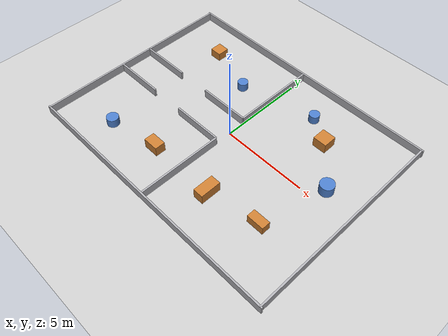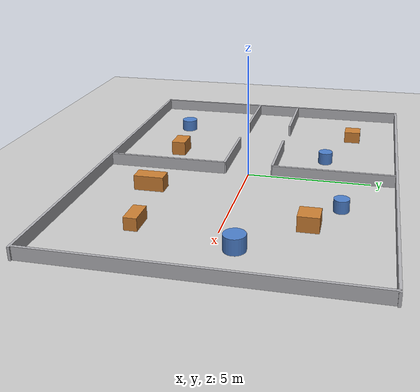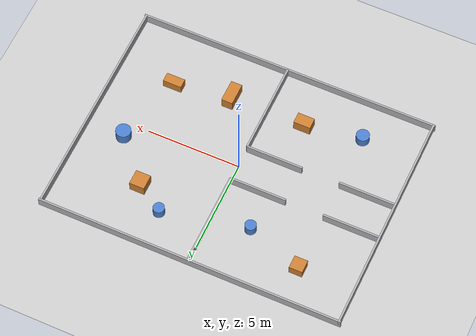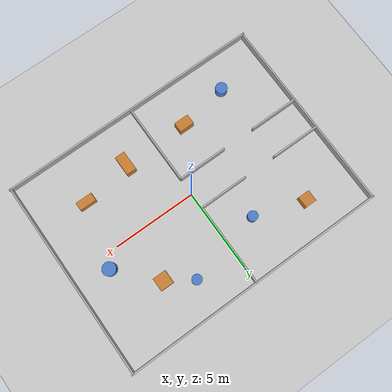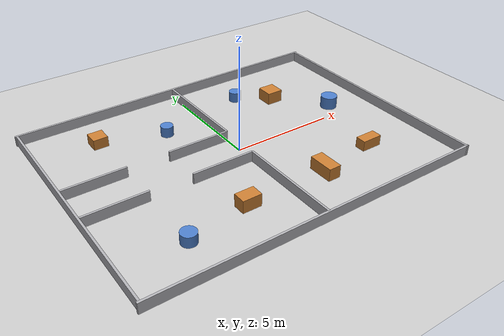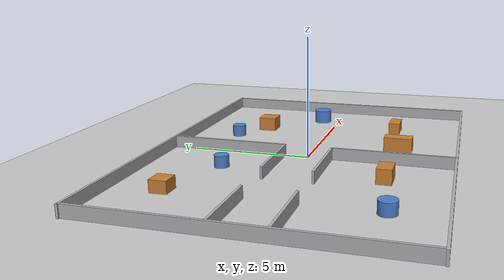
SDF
<?xml version="1.0" ?>
<sdf version="1.8">
  <world name="tribo_world">
    <physics name="1ms" type="ignored">
      <max_step_size>0.001</max_step_size>
      <real_time_factor>1.0</real_time_factor>
    </physics>

    <plugin filename="gz-sim-physics-system" name="gz::sim::systems::Physics"/>
    <plugin filename="gz-sim-sensors-system" name="gz::sim::systems::Sensors">
      <render_engine>ogre2</render_engine>
    </plugin>
    <plugin filename="gz-sim-user-commands-system" name="gz::sim::systems::UserCommands"/>
    <plugin filename="gz-sim-scene-broadcaster-system" name="gz::sim::systems::SceneBroadcaster"/>

    <!-- 바닥 (인라인 ground plane, 외부 모델 불필요) -->
    <model name="ground_plane">
      <static>true</static>
      <link name="link">
        <collision name="collision">
          <geometry>
            <plane><normal>0 0 1</normal><size>100 100</size></plane>
          </geometry>
          <surface>
            <friction><ode><mu>1.0</mu><mu2>1.0</mu2></ode></friction>
          </surface>
        </collision>
        <visual name="visual">
          <geometry>
            <plane><normal>0 0 1</normal><size>100 100</size></plane>
          </geometry>
          <material>
            <ambient>0.8 0.8 0.8 1</ambient>
            <diffuse>0.8 0.8 0.8 1</diffuse>
            <specular>0.2 0.2 0.2 1</specular>
          </material>
        </visual>
      </link>
    </model>

    <!-- 조명 -->
    <light type="directional" name="sun">
      <cast_shadows>false</cast_shadows>
      <pose>0 0 5 0 0 0</pose>
      <diffuse>1 1 1 1</diffuse>
      <specular>0.5 0.5 0.5 1</specular>
      <attenuation>
        <range>1000</range>
        <constant>1</constant>
        <linear>0</linear>
        <quadratic>0</quadratic>
      </attenuation>
      <direction>-0.3 0.3 -1</direction>
    </light>

    <!--  실내 맵 (16m x 12m). 방3 + 복도 + 문 + 장애물           -->
    <!--  좌표 X[-8,8], Y[-6,6]. 벽 높이 0.5, 두께 0.1           -->
    <!--  2026-08-21 8x6 -> 16x12 확대. 기존 복도/문 폭 1.0m 는   -->
    <!--  로봇 전폭 0.78m(트랙 0.74 + 바퀴폭)에 대해 좌우 11cm    -->
    <!--  씩밖에 안 남아, inflation_radius 0.45 가 통로를 통째로  -->
    <!--  덮어 Nav2 가 경로를 못 냈다. 제자리 회전(외접원 직경    -->
    <!--  0.93m)도 불가능했다. 복도와 문을 2.0m 로 넓혔다.        -->
    <!--   Room A (좌상)   |   Room C (우)                       -->
    <!--   [문]=========== |   (장애물 다수)                     -->
    <!--   복도 ========= [문] ====                              -->
    <!--   Room B (좌하)   |                                     -->

    <!-- 벽은 SDF라 xacro 불가, 개별 모델로 작성. 외벽 4면 -->
    <model name="wall_north"><static>true</static><pose>0 6 0.25 0 0 0</pose>
      <link name="l"><collision name="c"><geometry><box><size>16.2 0.1 0.5</size></box></geometry></collision>
      <visual name="v"><geometry><box><size>16.2 0.1 0.5</size></box></geometry>
        <material><ambient>0.7 0.7 0.72 1</ambient><diffuse>0.7 0.7 0.72 1</diffuse></material></visual></link></model>

    <model name="wall_south"><static>true</static><pose>0 -6 0.25 0 0 0</pose>
      <link name="l"><collision name="c"><geometry><box><size>16.2 0.1 0.5</size></box></geometry></collision>
      <visual name="v"><geometry><box><size>16.2 0.1 0.5</size></box></geometry>
        <material><ambient>0.7 0.7 0.72 1</ambient><diffuse>0.7 0.7 0.72 1</diffuse></material></visual></link></model>

    <model name="wall_west"><static>true</static><pose>-8 0 0.25 0 0 0</pose>
      <link name="l"><collision name="c"><geometry><box><size>0.1 12.1 0.5</size></box></geometry></collision>
      <visual name="v"><geometry><box><size>0.1 12.1 0.5</size></box></geometry>
        <material><ambient>0.7 0.7 0.72 1</ambient><diffuse>0.7 0.7 0.72 1</diffuse></material></visual></link></model>

    <model name="wall_east"><static>true</static><pose>8 0 0.25 0 0 0</pose>
      <link name="l"><collision name="c"><geometry><box><size>0.1 12.1 0.5</size></box></geometry></collision>
      <visual name="v"><geometry><box><size>0.1 12.1 0.5</size></box></geometry>
        <material><ambient>0.7 0.7 0.72 1</ambient><diffuse>0.7 0.7 0.72 1</diffuse></material></visual></link></model>

    <!-- 중앙 세로벽 (X=0). 복도 통과용 문(Y[-1,1], 폭 2.0m) -->
    <model name="wall_mid_top"><static>true</static><pose>0 3.5 0.25 0 0 0</pose>
      <link name="l"><collision name="c"><geometry><box><size>0.1 5.0 0.5</size></box></geometry></collision>
      <visual name="v"><geometry><box><size>0.1 5.0 0.5</size></box></geometry>
        <material><ambient>0.7 0.7 0.72 1</ambient><diffuse>0.7 0.7 0.72 1</diffuse></material></visual></link></model>

    <model name="wall_mid_bot"><static>true</static><pose>0 -3.5 0.25 0 0 0</pose>
      <link name="l"><collision name="c"><geometry><box><size>0.1 5.0 0.5</size></box></geometry></collision>
      <visual name="v"><geometry><box><size>0.1 5.0 0.5</size></box></geometry>
        <material><ambient>0.7 0.7 0.72 1</ambient><diffuse>0.7 0.7 0.72 1</diffuse></material></visual></link></model>

    <!-- Room A / 복도 칸막이 (Y=1, X[-8,0]). 문 X[-5,-3], 폭 2.0m -->
    <model name="wall_a1"><static>true</static><pose>-6.5 1 0.25 0 0 0</pose>
      <link name="l"><collision name="c"><geometry><box><size>3.0 0.1 0.5</size></box></geometry></collision>
      <visual name="v"><geometry><box><size>3.0 0.1 0.5</size></box></geometry>
        <material><ambient>0.7 0.7 0.72 1</ambient><diffuse>0.7 0.7 0.72 1</diffuse></material></visual></link></model>

    <model name="wall_a2"><static>true</static><pose>-1.5 1 0.25 0 0 0</pose>
      <link name="l"><collision name="c"><geometry><box><size>3.0 0.1 0.5</size></box></geometry></collision>
      <visual name="v"><geometry><box><size>3.0 0.1 0.5</size></box></geometry>
        <material><ambient>0.7 0.7 0.72 1</ambient><diffuse>0.7 0.7 0.72 1</diffuse></material></visual></link></model>

    <!-- Room B / 복도 칸막이 (Y=-1, X[-8,0]). 문 X[-5,-3], 폭 2.0m -->
    <model name="wall_b1"><static>true</static><pose>-6.5 -1 0.25 0 0 0</pose>
      <link name="l"><collision name="c"><geometry><box><size>3.0 0.1 0.5</size></box></geometry></collision>
      <visual name="v"><geometry><box><size>3.0 0.1 0.5</size></box></geometry>
        <material><ambient>0.7 0.7 0.72 1</ambient><diffuse>0.7 0.7 0.72 1</diffuse></material></visual></link></model>

    <model name="wall_b2"><static>true</static><pose>-1.5 -1 0.25 0 0 0</pose>
      <link name="l"><collision name="c"><geometry><box><size>3.0 0.1 0.5</size></box></geometry></collision>
      <visual name="v"><geometry><box><size>3.0 0.1 0.5</size></box></geometry>
        <material><ambient>0.7 0.7 0.72 1</ambient><diffuse>0.7 0.7 0.72 1</diffuse></material></visual></link></model>

    <!-- ================= 장애물 ================= -->
    <!-- 크기는 실물 가구 수준으로 두고 위치만 넓어진 방에 맞춰 재배치. -->
    <!-- 서로, 그리고 벽과 최소 1.4m 이상 띄워 로봇(전폭 0.78)이 -->
    <!-- inflation 을 포함해 통과할 수 있게 했다. -->
    <!-- Room C (우) -->
    <model name="obs_box1"><static>true</static><pose>4.0 3.0 0.3 0 0 0</pose>
      <link name="l"><collision name="c"><geometry><box><size>0.8 0.8 0.6</size></box></geometry></collision>
      <visual name="v"><geometry><box><size>0.8 0.8 0.6</size></box></geometry>
        <material><ambient>0.8 0.5 0.2 1</ambient><diffuse>0.8 0.5 0.2 1</diffuse></material></visual></link></model>

    <model name="obs_box2"><static>true</static><pose>5.0 -3.0 0.25 0 0 0</pose>
      <link name="l"><collision name="c"><geometry><box><size>1.0 0.5 0.5</size></box></geometry></collision>
      <visual name="v"><geometry><box><size>1.0 0.5 0.5</size></box></geometry>
        <material><ambient>0.8 0.5 0.2 1</ambient><diffuse>0.8 0.5 0.2 1</diffuse></material></visual></link></model>

    <model name="obs_cyl1"><static>true</static><pose>6.0 0.8 0.3 0 0 0</pose>
      <link name="l"><collision name="c"><geometry><cylinder><radius>0.4</radius><length>0.6</length></cylinder></geometry></collision>
      <visual name="v"><geometry><cylinder><radius>0.4</radius><length>0.6</length></cylinder></geometry>
        <material><ambient>0.3 0.5 0.8 1</ambient><diffuse>0.3 0.5 0.8 1</diffuse></material></visual></link></model>

    <model name="obs_box4"><static>true</static><pose>2.0 -3.5 0.3 0 0 0</pose>
      <link name="l"><collision name="c"><geometry><box><size>0.6 1.2 0.6</size></box></geometry></collision>
      <visual name="v"><geometry><box><size>0.6 1.2 0.6</size></box></geometry>
        <material><ambient>0.8 0.5 0.2 1</ambient><diffuse>0.8 0.5 0.2 1</diffuse></material></visual></link></model>

    <model name="obs_cyl3"><static>true</static><pose>2.5 4.0 0.25 0 0 0</pose>
      <link name="l"><collision name="c"><geometry><cylinder><radius>0.3</radius><length>0.5</length></cylinder></geometry></collision>
      <visual name="v"><geometry><cylinder><radius>0.3</radius><length>0.5</length></cylinder></geometry>
        <material><ambient>0.3 0.5 0.8 1</ambient><diffuse>0.3 0.5 0.8 1</diffuse></material></visual></link></model>

    <!-- Room A (좌상) -->
    <model name="obs_box3"><static>true</static><pose>-5.0 4.0 0.25 0 0 0</pose>
      <link name="l"><collision name="c"><geometry><box><size>0.7 0.7 0.5</size></box></geometry></collision>
      <visual name="v"><geometry><box><size>0.7 0.7 0.5</size></box></geometry>
        <material><ambient>0.8 0.5 0.2 1</ambient><diffuse>0.8 0.5 0.2 1</diffuse></material></visual></link></model>

    <model name="obs_cyl4"><static>true</static><pose>-2.0 3.0 0.25 0 0 0</pose>
      <link name="l"><collision name="c"><geometry><cylinder><radius>0.3</radius><length>0.5</length></cylinder></geometry></collision>
      <visual name="v"><geometry><cylinder><radius>0.3</radius><length>0.5</length></cylinder></geometry>
        <material><ambient>0.3 0.5 0.8 1</ambient><diffuse>0.3 0.5 0.8 1</diffuse></material></visual></link></model>

    <!-- Room B (좌하) -->
    <model name="obs_cyl2"><static>true</static><pose>-5.0 -4.0 0.25 0 0 0</pose>
      <link name="l"><collision name="c"><geometry><cylinder><radius>0.35</radius><length>0.5</length></cylinder></geometry></collision>
      <visual name="v"><geometry><cylinder><radius>0.35</radius><length>0.5</length></cylinder></geometry>
        <material><ambient>0.3 0.5 0.8 1</ambient><diffuse>0.3 0.5 0.8 1</diffuse></material></visual></link></model>

    <model name="obs_box5"><static>true</static><pose>-2.0 -3.5 0.3 0 0 0</pose>
      <link name="l"><collision name="c"><geometry><box><size>0.9 0.6 0.6</size></box></geometry></collision>
      <visual name="v"><geometry><box><size>0.9 0.6 0.6</size></box></geometry>
        <material><ambient>0.8 0.5 0.2 1</ambient><diffuse>0.8 0.5 0.2 1</diffuse></material></visual></link></model>

  </world>
</sdf>
